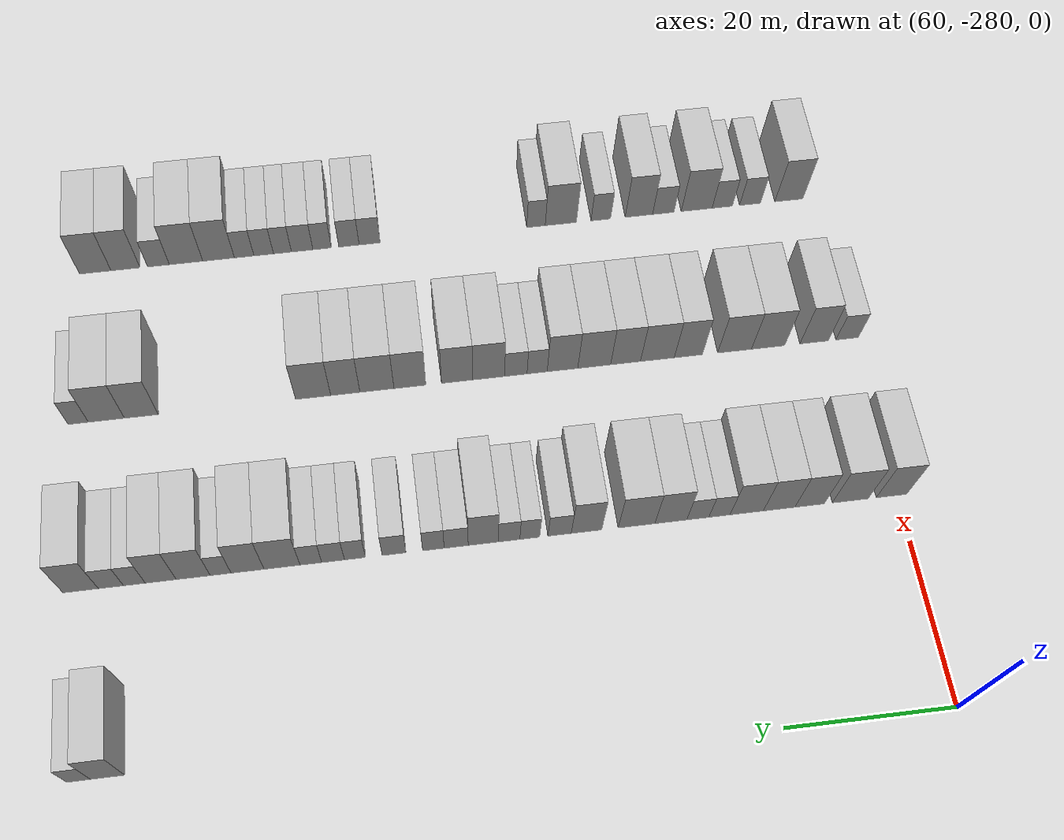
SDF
<sdf version="1.6">
 <world name="default">
  <model name="building_421">
   <static>1</static>
   <pose>69.0000 -184.6597 0 0.000000 0.000000 0.000000</pose>
   <link name="link">
    <pose>0 0 4.50 0 0 0</pose>
    <collision name="collision"><geometry><box><size>10.0000 3.7377 9.0000</size></box></geometry></collision>
    <visual name="visual">
     <cast_shadows>0</cast_shadows>
     <geometry><box><size>10.0000 3.7377 9.0000</size></box></geometry>
     <material>
      <script>
       <uri>model://HANNAS_wall/materials/scripts</uri>
       <uri>model://HANNAS_wall/materials/textures</uri>
       <name>vrc/HANNAS_wall</name>
      </script>
     </material>
    </visual>
   </link>
  </model>
  <model name="building_422">
   <static>1</static>
   <pose>69.0000 -181.4942 0 0.000000 0.000000 0.000000</pose>
   <link name="link">
    <pose>0 0 3.00 0 0 0</pose>
    <collision name="collision"><geometry><box><size>10.0000 2.5933 6.0000</size></box></geometry></collision>
    <visual name="visual">
     <cast_shadows>0</cast_shadows>
     <geometry><box><size>10.0000 2.5933 6.0000</size></box></geometry>
     <material>
      <script>
       <uri>model://HANNAS_wall/materials/scripts</uri>
       <uri>model://HANNAS_wall/materials/textures</uri>
       <name>vrc/HANNAS_wall</name>
      </script>
     </material>
    </visual>
   </link>
  </model>
  <model name="building_589">
   <static>1</static>
   <pose>91.0000 -279.3020 0 0.000000 0.000000 0.000000</pose>
   <link name="link">
    <pose>0 0 4.50 0 0 0</pose>
    <collision name="collision"><geometry><box><size>10.0000 3.8120 9.0000</size></box></geometry></collision>
    <visual name="visual">
     <cast_shadows>0</cast_shadows>
     <geometry><box><size>10.0000 3.8120 9.0000</size></box></geometry>
     <material>
      <script>
       <uri>model://HANNAS_wall/materials/scripts</uri>
       <uri>model://HANNAS_wall/materials/textures</uri>
       <name>vrc/HANNAS_wall</name>
      </script>
     </material>
    </visual>
   </link>
  </model>
  <model name="building_590">
   <static>1</static>
   <pose>91.0000 -274.1659 0 0.000000 0.000000 0.000000</pose>
   <link name="link">
    <pose>0 0 4.50 0 0 0</pose>
    <collision name="collision"><geometry><box><size>10.0000 4.4603 9.0000</size></box></geometry></collision>
    <visual name="visual">
     <cast_shadows>0</cast_shadows>
     <geometry><box><size>10.0000 4.4603 9.0000</size></box></geometry>
     <material>
      <script>
       <uri>model://HANNAS_wall/materials/scripts</uri>
       <uri>model://HANNAS_wall/materials/textures</uri>
       <name>vrc/HANNAS_wall</name>
      </script>
     </material>
    </visual>
   </link>
  </model>
  <model name="building_591">
   <static>1</static>
   <pose>91.0000 -269.1174 0 0.000000 0.000000 0.000000</pose>
   <link name="link">
    <pose>0 0 4.50 0 0 0</pose>
    <collision name="collision"><geometry><box><size>10.0000 3.6366 9.0000</size></box></geometry></collision>
    <visual name="visual">
     <cast_shadows>0</cast_shadows>
     <geometry><box><size>10.0000 3.6366 9.0000</size></box></geometry>
     <material>
      <script>
       <uri>model://HANNAS_wall/materials/scripts</uri>
       <uri>model://HANNAS_wall/materials/textures</uri>
       <name>vrc/HANNAS_wall</name>
      </script>
     </material>
    </visual>
   </link>
  </model>
  <model name="building_592">
   <static>1</static>
   <pose>91.0000 -265.3393 0 0.000000 0.000000 0.000000</pose>
   <link name="link">
    <pose>0 0 4.50 0 0 0</pose>
    <collision name="collision"><geometry><box><size>10.0000 3.9196 9.0000</size></box></geometry></collision>
    <visual name="visual">
     <cast_shadows>0</cast_shadows>
     <geometry><box><size>10.0000 3.9196 9.0000</size></box></geometry>
     <material>
      <script>
       <uri>model://HANNAS_wall/materials/scripts</uri>
       <uri>model://HANNAS_wall/materials/textures</uri>
       <name>vrc/HANNAS_wall</name>
      </script>
     </material>
    </visual>
   </link>
  </model>
  <model name="building_593">
   <static>1</static>
   <pose>91.0000 -261.3252 0 0.000000 0.000000 0.000000</pose>
   <link name="link">
    <pose>0 0 4.50 0 0 0</pose>
    <collision name="collision"><geometry><box><size>10.0000 4.1085 9.0000</size></box></geometry></collision>
    <visual name="visual">
     <cast_shadows>0</cast_shadows>
     <geometry><box><size>10.0000 4.1085 9.0000</size></box></geometry>
     <material>
      <script>
       <uri>model://HANNAS_wall/materials/scripts</uri>
       <uri>model://HANNAS_wall/materials/textures</uri>
       <name>vrc/HANNAS_wall</name>
      </script>
     </material>
    </visual>
   </link>
  </model>
  <model name="building_594">
   <static>1</static>
   <pose>91.0000 -257.9754 0 0.000000 0.000000 0.000000</pose>
   <link name="link">
    <pose>0 0 3.00 0 0 0</pose>
    <collision name="collision"><geometry><box><size>10.0000 2.5911 6.0000</size></box></geometry></collision>
    <visual name="visual">
     <cast_shadows>0</cast_shadows>
     <geometry><box><size>10.0000 2.5911 6.0000</size></box></geometry>
     <material>
      <script>
       <uri>model://HANNAS_wall/materials/scripts</uri>
       <uri>model://HANNAS_wall/materials/textures</uri>
       <name>vrc/HANNAS_wall</name>
      </script>
     </material>
    </visual>
   </link>
  </model>
  <model name="building_595">
   <static>1</static>
   <pose>91.0000 -255.3203 0 0.000000 0.000000 0.000000</pose>
   <link name="link">
    <pose>0 0 3.00 0 0 0</pose>
    <collision name="collision"><geometry><box><size>10.0000 2.7192 6.0000</size></box></geometry></collision>
    <visual name="visual">
     <cast_shadows>0</cast_shadows>
     <geometry><box><size>10.0000 2.7192 6.0000</size></box></geometry>
     <material>
      <script>
       <uri>model://HANNAS_wall/materials/scripts</uri>
       <uri>model://HANNAS_wall/materials/textures</uri>
       <name>vrc/HANNAS_wall</name>
      </script>
     </material>
    </visual>
   </link>
  </model>
  <model name="building_596">
   <static>1</static>
   <pose>91.0000 -252.0089 0 0.000000 0.000000 0.000000</pose>
   <link name="link">
    <pose>0 0 4.50 0 0 0</pose>
    <collision name="collision"><geometry><box><size>10.0000 3.9035 9.0000</size></box></geometry></collision>
    <visual name="visual">
     <cast_shadows>0</cast_shadows>
     <geometry><box><size>10.0000 3.9035 9.0000</size></box></geometry>
     <material>
      <script>
       <uri>model://HANNAS_wall/materials/scripts</uri>
       <uri>model://HANNAS_wall/materials/textures</uri>
       <name>vrc/HANNAS_wall</name>
      </script>
     </material>
    </visual>
   </link>
  </model>
  <model name="building_597">
   <static>1</static>
   <pose>91.0000 -247.8143 0 0.000000 0.000000 0.000000</pose>
   <link name="link">
    <pose>0 0 4.50 0 0 0</pose>
    <collision name="collision"><geometry><box><size>10.0000 4.4857 9.0000</size></box></geometry></collision>
    <visual name="visual">
     <cast_shadows>0</cast_shadows>
     <geometry><box><size>10.0000 4.4857 9.0000</size></box></geometry>
     <material>
      <script>
       <uri>model://HANNAS_wall/materials/scripts</uri>
       <uri>model://HANNAS_wall/materials/textures</uri>
       <name>vrc/HANNAS_wall</name>
      </script>
     </material>
    </visual>
   </link>
  </model>
  <model name="building_598">
   <static>1</static>
   <pose>91.0000 -241.7191 0 0.000000 0.000000 0.000000</pose>
   <link name="link">
    <pose>0 0 4.50 0 0 0</pose>
    <collision name="collision"><geometry><box><size>10.0000 3.7048 9.0000</size></box></geometry></collision>
    <visual name="visual">
     <cast_shadows>0</cast_shadows>
     <geometry><box><size>10.0000 3.7048 9.0000</size></box></geometry>
     <material>
      <script>
       <uri>model://HANNAS_wall/materials/scripts</uri>
       <uri>model://HANNAS_wall/materials/textures</uri>
       <name>vrc/HANNAS_wall</name>
      </script>
     </material>
    </visual>
   </link>
  </model>
  <model name="building_599">
   <static>1</static>
   <pose>91.0000 -238.4529 0 0.000000 0.000000 0.000000</pose>
   <link name="link">
    <pose>0 0 3.00 0 0 0</pose>
    <collision name="collision"><geometry><box><size>10.0000 2.8276 6.0000</size></box></geometry></collision>
    <visual name="visual">
     <cast_shadows>0</cast_shadows>
     <geometry><box><size>10.0000 2.8276 6.0000</size></box></geometry>
     <material>
      <script>
       <uri>model://HANNAS_wall/materials/scripts</uri>
       <uri>model://HANNAS_wall/materials/textures</uri>
       <name>vrc/HANNAS_wall</name>
      </script>
     </material>
    </visual>
   </link>
  </model>
  <model name="building_600">
   <static>1</static>
   <pose>91.0000 -234.8374 0 0.000000 0.000000 0.000000</pose>
   <link name="link">
    <pose>0 0 3.00 0 0 0</pose>
    <collision name="collision"><geometry><box><size>10.0000 2.4034 6.0000</size></box></geometry></collision>
    <visual name="visual">
     <cast_shadows>0</cast_shadows>
     <geometry><box><size>10.0000 2.4034 6.0000</size></box></geometry>
     <material>
      <script>
       <uri>model://HANNAS_wall/materials/scripts</uri>
       <uri>model://HANNAS_wall/materials/textures</uri>
       <name>vrc/HANNAS_wall</name>
      </script>
     </material>
    </visual>
   </link>
  </model>
  <model name="building_601">
   <static>1</static>
   <pose>91.0000 -232.3270 0 0.000000 0.000000 0.000000</pose>
   <link name="link">
    <pose>0 0 3.00 0 0 0</pose>
    <collision name="collision"><geometry><box><size>10.0000 2.6175 6.0000</size></box></geometry></collision>
    <visual name="visual">
     <cast_shadows>0</cast_shadows>
     <geometry><box><size>10.0000 2.6175 6.0000</size></box></geometry>
     <material>
      <script>
       <uri>model://HANNAS_wall/materials/scripts</uri>
       <uri>model://HANNAS_wall/materials/textures</uri>
       <name>vrc/HANNAS_wall</name>
      </script>
     </material>
    </visual>
   </link>
  </model>
  <model name="building_602">
   <static>1</static>
   <pose>91.0000 -229.2131 0 0.000000 0.000000 0.000000</pose>
   <link name="link">
    <pose>0 0 4.50 0 0 0</pose>
    <collision name="collision"><geometry><box><size>10.0000 3.6104 9.0000</size></box></geometry></collision>
    <visual name="visual">
     <cast_shadows>0</cast_shadows>
     <geometry><box><size>10.0000 3.6104 9.0000</size></box></geometry>
     <material>
      <script>
       <uri>model://HANNAS_wall/materials/scripts</uri>
       <uri>model://HANNAS_wall/materials/textures</uri>
       <name>vrc/HANNAS_wall</name>
      </script>
     </material>
    </visual>
   </link>
  </model>
  <model name="building_603">
   <static>1</static>
   <pose>91.0000 -225.9628 0 0.000000 0.000000 0.000000</pose>
   <link name="link">
    <pose>0 0 3.00 0 0 0</pose>
    <collision name="collision"><geometry><box><size>10.0000 2.8900 6.0000</size></box></geometry></collision>
    <visual name="visual">
     <cast_shadows>0</cast_shadows>
     <geometry><box><size>10.0000 2.8900 6.0000</size></box></geometry>
     <material>
      <script>
       <uri>model://HANNAS_wall/materials/scripts</uri>
       <uri>model://HANNAS_wall/materials/textures</uri>
       <name>vrc/HANNAS_wall</name>
      </script>
     </material>
    </visual>
   </link>
  </model>
  <model name="building_604">
   <static>1</static>
   <pose>91.0000 -223.2282 0 0.000000 0.000000 0.000000</pose>
   <link name="link">
    <pose>0 0 3.00 0 0 0</pose>
    <collision name="collision"><geometry><box><size>10.0000 2.5791 6.0000</size></box></geometry></collision>
    <visual name="visual">
     <cast_shadows>0</cast_shadows>
     <geometry><box><size>10.0000 2.5791 6.0000</size></box></geometry>
     <material>
      <script>
       <uri>model://HANNAS_wall/materials/scripts</uri>
       <uri>model://HANNAS_wall/materials/textures</uri>
       <name>vrc/HANNAS_wall</name>
      </script>
     </material>
    </visual>
   </link>
  </model>
  <model name="building_605">
   <static>1</static>
   <pose>91.0000 -218.5192 0 0.000000 0.000000 0.000000</pose>
   <link name="link">
    <pose>0 0 3.00 0 0 0</pose>
    <collision name="collision"><geometry><box><size>10.0000 2.8389 6.0000</size></box></geometry></collision>
    <visual name="visual">
     <cast_shadows>0</cast_shadows>
     <geometry><box><size>10.0000 2.8389 6.0000</size></box></geometry>
     <material>
      <script>
       <uri>model://HANNAS_wall/materials/scripts</uri>
       <uri>model://HANNAS_wall/materials/textures</uri>
       <name>vrc/HANNAS_wall</name>
      </script>
     </material>
    </visual>
   </link>
  </model>
  <model name="building_606">
   <static>1</static>
   <pose>91.0000 -213.8500 0 0.000000 0.000000 0.000000</pose>
   <link name="link">
    <pose>0 0 3.00 0 0 0</pose>
    <collision name="collision"><geometry><box><size>10.0000 2.4995 6.0000</size></box></geometry></collision>
    <visual name="visual">
     <cast_shadows>0</cast_shadows>
     <geometry><box><size>10.0000 2.4995 6.0000</size></box></geometry>
     <material>
      <script>
       <uri>model://HANNAS_wall/materials/scripts</uri>
       <uri>model://HANNAS_wall/materials/textures</uri>
       <name>vrc/HANNAS_wall</name>
      </script>
     </material>
    </visual>
   </link>
  </model>
  <model name="building_607">
   <static>1</static>
   <pose>91.0000 -211.2538 0 0.000000 0.000000 0.000000</pose>
   <link name="link">
    <pose>0 0 3.00 0 0 0</pose>
    <collision name="collision"><geometry><box><size>10.0000 2.6928 6.0000</size></box></geometry></collision>
    <visual name="visual">
     <cast_shadows>0</cast_shadows>
     <geometry><box><size>10.0000 2.6928 6.0000</size></box></geometry>
     <material>
      <script>
       <uri>model://HANNAS_wall/materials/scripts</uri>
       <uri>model://HANNAS_wall/materials/textures</uri>
       <name>vrc/HANNAS_wall</name>
      </script>
     </material>
    </visual>
   </link>
  </model>
  <model name="building_608">
   <static>1</static>
   <pose>91.0000 -208.6113 0 0.000000 0.000000 0.000000</pose>
   <link name="link">
    <pose>0 0 3.00 0 0 0</pose>
    <collision name="collision"><geometry><box><size>10.0000 2.5922 6.0000</size></box></geometry></collision>
    <visual name="visual">
     <cast_shadows>0</cast_shadows>
     <geometry><box><size>10.0000 2.5922 6.0000</size></box></geometry>
     <material>
      <script>
       <uri>model://HANNAS_wall/materials/scripts</uri>
       <uri>model://HANNAS_wall/materials/textures</uri>
       <name>vrc/HANNAS_wall</name>
      </script>
     </material>
    </visual>
   </link>
  </model>
  <model name="building_609">
   <static>1</static>
   <pose>91.0000 -205.1755 0 0.000000 0.000000 0.000000</pose>
   <link name="link">
    <pose>0 0 4.50 0 0 0</pose>
    <collision name="collision"><geometry><box><size>10.0000 4.2794 9.0000</size></box></geometry></collision>
    <visual name="visual">
     <cast_shadows>0</cast_shadows>
     <geometry><box><size>10.0000 4.2794 9.0000</size></box></geometry>
     <material>
      <script>
       <uri>model://HANNAS_wall/materials/scripts</uri>
       <uri>model://HANNAS_wall/materials/textures</uri>
       <name>vrc/HANNAS_wall</name>
      </script>
     </material>
    </visual>
   </link>
  </model>
  <model name="building_610">
   <static>1</static>
   <pose>91.0000 -201.0883 0 0.000000 0.000000 0.000000</pose>
   <link name="link">
    <pose>0 0 4.50 0 0 0</pose>
    <collision name="collision"><geometry><box><size>10.0000 3.8949 9.0000</size></box></geometry></collision>
    <visual name="visual">
     <cast_shadows>0</cast_shadows>
     <geometry><box><size>10.0000 3.8949 9.0000</size></box></geometry>
     <material>
      <script>
       <uri>model://HANNAS_wall/materials/scripts</uri>
       <uri>model://HANNAS_wall/materials/textures</uri>
       <name>vrc/HANNAS_wall</name>
      </script>
     </material>
    </visual>
   </link>
  </model>
  <model name="building_611">
   <static>1</static>
   <pose>91.0000 -197.9103 0 0.000000 0.000000 0.000000</pose>
   <link name="link">
    <pose>0 0 3.00 0 0 0</pose>
    <collision name="collision"><geometry><box><size>10.0000 2.4612 6.0000</size></box></geometry></collision>
    <visual name="visual">
     <cast_shadows>0</cast_shadows>
     <geometry><box><size>10.0000 2.4612 6.0000</size></box></geometry>
     <material>
      <script>
       <uri>model://HANNAS_wall/materials/scripts</uri>
       <uri>model://HANNAS_wall/materials/textures</uri>
       <name>vrc/HANNAS_wall</name>
      </script>
     </material>
    </visual>
   </link>
  </model>
  <model name="building_612">
   <static>1</static>
   <pose>91.0000 -194.6801 0 0.000000 0.000000 0.000000</pose>
   <link name="link">
    <pose>0 0 4.50 0 0 0</pose>
    <collision name="collision"><geometry><box><size>10.0000 3.9992 9.0000</size></box></geometry></collision>
    <visual name="visual">
     <cast_shadows>0</cast_shadows>
     <geometry><box><size>10.0000 3.9992 9.0000</size></box></geometry>
     <material>
      <script>
       <uri>model://HANNAS_wall/materials/scripts</uri>
       <uri>model://HANNAS_wall/materials/textures</uri>
       <name>vrc/HANNAS_wall</name>
      </script>
     </material>
    </visual>
   </link>
  </model>
  <model name="building_613">
   <static>1</static>
   <pose>91.0000 -190.8621 0 0.000000 0.000000 0.000000</pose>
   <link name="link">
    <pose>0 0 4.50 0 0 0</pose>
    <collision name="collision"><geometry><box><size>10.0000 3.6367 9.0000</size></box></geometry></collision>
    <visual name="visual">
     <cast_shadows>0</cast_shadows>
     <geometry><box><size>10.0000 3.6367 9.0000</size></box></geometry>
     <material>
      <script>
       <uri>model://HANNAS_wall/materials/scripts</uri>
       <uri>model://HANNAS_wall/materials/textures</uri>
       <name>vrc/HANNAS_wall</name>
      </script>
     </material>
    </visual>
   </link>
  </model>
  <model name="building_614">
   <static>1</static>
   <pose>91.0000 -187.7727 0 0.000000 0.000000 0.000000</pose>
   <link name="link">
    <pose>0 0 3.00 0 0 0</pose>
    <collision name="collision"><geometry><box><size>10.0000 2.5421 6.0000</size></box></geometry></collision>
    <visual name="visual">
     <cast_shadows>0</cast_shadows>
     <geometry><box><size>10.0000 2.5421 6.0000</size></box></geometry>
     <material>
      <script>
       <uri>model://HANNAS_wall/materials/scripts</uri>
       <uri>model://HANNAS_wall/materials/textures</uri>
       <name>vrc/HANNAS_wall</name>
      </script>
     </material>
    </visual>
   </link>
  </model>
  <model name="building_615">
   <static>1</static>
   <pose>91.0000 -185.0301 0 0.000000 0.000000 0.000000</pose>
   <link name="link">
    <pose>0 0 3.00 0 0 0</pose>
    <collision name="collision"><geometry><box><size>10.0000 2.9431 6.0000</size></box></geometry></collision>
    <visual name="visual">
     <cast_shadows>0</cast_shadows>
     <geometry><box><size>10.0000 2.9431 6.0000</size></box></geometry>
     <material>
      <script>
       <uri>model://HANNAS_wall/materials/scripts</uri>
       <uri>model://HANNAS_wall/materials/textures</uri>
       <name>vrc/HANNAS_wall</name>
      </script>
     </material>
    </visual>
   </link>
  </model>
  <model name="building_616">
   <static>1</static>
   <pose>91.0000 -181.4912 0 0.000000 0.000000 0.000000</pose>
   <link name="link">
    <pose>0 0 4.50 0 0 0</pose>
    <collision name="collision"><geometry><box><size>10.0000 4.1348 9.0000</size></box></geometry></collision>
    <visual name="visual">
     <cast_shadows>0</cast_shadows>
     <geometry><box><size>10.0000 4.1348 9.0000</size></box></geometry>
     <material>
      <script>
       <uri>model://HANNAS_wall/materials/scripts</uri>
       <uri>model://HANNAS_wall/materials/textures</uri>
       <name>vrc/HANNAS_wall</name>
      </script>
     </material>
    </visual>
   </link>
  </model>
  <model name="building_783">
   <static>1</static>
   <pose>113.0000 -279.2886 0 0.000000 0.000000 0.000000</pose>
   <link name="link">
    <pose>0 0 3.00 0 0 0</pose>
    <collision name="collision"><geometry><box><size>10.0000 2.9681 6.0000</size></box></geometry></collision>
    <visual name="visual">
     <cast_shadows>0</cast_shadows>
     <geometry><box><size>10.0000 2.9681 6.0000</size></box></geometry>
     <material>
      <script>
       <uri>model://HANNAS_wall/materials/scripts</uri>
       <uri>model://HANNAS_wall/materials/textures</uri>
       <name>vrc/HANNAS_wall</name>
      </script>
     </material>
    </visual>
   </link>
  </model>
  <model name="building_784">
   <static>1</static>
   <pose>113.0000 -274.9333 0 0.000000 0.000000 0.000000</pose>
   <link name="link">
    <pose>0 0 4.50 0 0 0</pose>
    <collision name="collision"><geometry><box><size>10.0000 3.7425 9.0000</size></box></geometry></collision>
    <visual name="visual">
     <cast_shadows>0</cast_shadows>
     <geometry><box><size>10.0000 3.7425 9.0000</size></box></geometry>
     <material>
      <script>
       <uri>model://HANNAS_wall/materials/scripts</uri>
       <uri>model://HANNAS_wall/materials/textures</uri>
       <name>vrc/HANNAS_wall</name>
      </script>
     </material>
    </visual>
   </link>
  </model>
  <model name="building_785">
   <static>1</static>
   <pose>113.0000 -268.8866 0 0.000000 0.000000 0.000000</pose>
   <link name="link">
    <pose>0 0 4.50 0 0 0</pose>
    <collision name="collision"><geometry><box><size>10.0000 4.3509 9.0000</size></box></geometry></collision>
    <visual name="visual">
     <cast_shadows>0</cast_shadows>
     <geometry><box><size>10.0000 4.3509 9.0000</size></box></geometry>
     <material>
      <script>
       <uri>model://HANNAS_wall/materials/scripts</uri>
       <uri>model://HANNAS_wall/materials/textures</uri>
       <name>vrc/HANNAS_wall</name>
      </script>
     </material>
    </visual>
   </link>
  </model>
  <model name="building_786">
   <static>1</static>
   <pose>113.0000 -264.4949 0 0.000000 0.000000 0.000000</pose>
   <link name="link">
    <pose>0 0 4.50 0 0 0</pose>
    <collision name="collision"><geometry><box><size>10.0000 4.4325 9.0000</size></box></geometry></collision>
    <visual name="visual">
     <cast_shadows>0</cast_shadows>
     <geometry><box><size>10.0000 4.4325 9.0000</size></box></geometry>
     <material>
      <script>
       <uri>model://HANNAS_wall/materials/scripts</uri>
       <uri>model://HANNAS_wall/materials/textures</uri>
       <name>vrc/HANNAS_wall</name>
      </script>
     </material>
    </visual>
   </link>
  </model>
  <model name="building_787">
   <static>1</static>
   <pose>113.0000 -258.4489 0 0.000000 0.000000 0.000000</pose>
   <link name="link">
    <pose>0 0 4.50 0 0 0</pose>
    <collision name="collision"><geometry><box><size>10.0000 3.6595 9.0000</size></box></geometry></collision>
    <visual name="visual">
     <cast_shadows>0</cast_shadows>
     <geometry><box><size>10.0000 3.6595 9.0000</size></box></geometry>
     <material>
      <script>
       <uri>model://HANNAS_wall/materials/scripts</uri>
       <uri>model://HANNAS_wall/materials/textures</uri>
       <name>vrc/HANNAS_wall</name>
      </script>
     </material>
    </visual>
   </link>
  </model>
  <model name="building_788">
   <static>1</static>
   <pose>113.0000 -254.4229 0 0.000000 0.000000 0.000000</pose>
   <link name="link">
    <pose>0 0 4.50 0 0 0</pose>
    <collision name="collision"><geometry><box><size>10.0000 4.3925 9.0000</size></box></geometry></collision>
    <visual name="visual">
     <cast_shadows>0</cast_shadows>
     <geometry><box><size>10.0000 4.3925 9.0000</size></box></geometry>
     <material>
      <script>
       <uri>model://HANNAS_wall/materials/scripts</uri>
       <uri>model://HANNAS_wall/materials/textures</uri>
       <name>vrc/HANNAS_wall</name>
      </script>
     </material>
    </visual>
   </link>
  </model>
  <model name="building_789">
   <static>1</static>
   <pose>113.0000 -250.2939 0 0.000000 0.000000 0.000000</pose>
   <link name="link">
    <pose>0 0 4.50 0 0 0</pose>
    <collision name="collision"><geometry><box><size>10.0000 3.8654 9.0000</size></box></geometry></collision>
    <visual name="visual">
     <cast_shadows>0</cast_shadows>
     <geometry><box><size>10.0000 3.8654 9.0000</size></box></geometry>
     <material>
      <script>
       <uri>model://HANNAS_wall/materials/scripts</uri>
       <uri>model://HANNAS_wall/materials/textures</uri>
       <name>vrc/HANNAS_wall</name>
      </script>
     </material>
    </visual>
   </link>
  </model>
  <model name="building_790">
   <static>1</static>
   <pose>113.0000 -246.2381 0 0.000000 0.000000 0.000000</pose>
   <link name="link">
    <pose>0 0 4.50 0 0 0</pose>
    <collision name="collision"><geometry><box><size>10.0000 4.2463 9.0000</size></box></geometry></collision>
    <visual name="visual">
     <cast_shadows>0</cast_shadows>
     <geometry><box><size>10.0000 4.2463 9.0000</size></box></geometry>
     <material>
      <script>
       <uri>model://HANNAS_wall/materials/scripts</uri>
       <uri>model://HANNAS_wall/materials/textures</uri>
       <name>vrc/HANNAS_wall</name>
      </script>
     </material>
    </visual>
   </link>
  </model>
  <model name="building_791">
   <static>1</static>
   <pose>113.0000 -242.1448 0 0.000000 0.000000 0.000000</pose>
   <link name="link">
    <pose>0 0 4.50 0 0 0</pose>
    <collision name="collision"><geometry><box><size>10.0000 3.9402 9.0000</size></box></geometry></collision>
    <visual name="visual">
     <cast_shadows>0</cast_shadows>
     <geometry><box><size>10.0000 3.9402 9.0000</size></box></geometry>
     <material>
      <script>
       <uri>model://HANNAS_wall/materials/scripts</uri>
       <uri>model://HANNAS_wall/materials/textures</uri>
       <name>vrc/HANNAS_wall</name>
      </script>
     </material>
    </visual>
   </link>
  </model>
  <model name="building_792">
   <static>1</static>
   <pose>113.0000 -238.8808 0 0.000000 0.000000 0.000000</pose>
   <link name="link">
    <pose>0 0 3.00 0 0 0</pose>
    <collision name="collision"><geometry><box><size>10.0000 2.5878 6.0000</size></box></geometry></collision>
    <visual name="visual">
     <cast_shadows>0</cast_shadows>
     <geometry><box><size>10.0000 2.5878 6.0000</size></box></geometry>
     <material>
      <script>
       <uri>model://HANNAS_wall/materials/scripts</uri>
       <uri>model://HANNAS_wall/materials/textures</uri>
       <name>vrc/HANNAS_wall</name>
      </script>
     </material>
    </visual>
   </link>
  </model>
  <model name="building_793">
   <static>1</static>
   <pose>113.0000 -236.1374 0 0.000000 0.000000 0.000000</pose>
   <link name="link">
    <pose>0 0 3.00 0 0 0</pose>
    <collision name="collision"><geometry><box><size>10.0000 2.8991 6.0000</size></box></geometry></collision>
    <visual name="visual">
     <cast_shadows>0</cast_shadows>
     <geometry><box><size>10.0000 2.8991 6.0000</size></box></geometry>
     <material>
      <script>
       <uri>model://HANNAS_wall/materials/scripts</uri>
       <uri>model://HANNAS_wall/materials/textures</uri>
       <name>vrc/HANNAS_wall</name>
      </script>
     </material>
    </visual>
   </link>
  </model>
  <model name="building_794">
   <static>1</static>
   <pose>113.0000 -232.6427 0 0.000000 0.000000 0.000000</pose>
   <link name="link">
    <pose>0 0 4.50 0 0 0</pose>
    <collision name="collision"><geometry><box><size>10.0000 4.0904 9.0000</size></box></geometry></collision>
    <visual name="visual">
     <cast_shadows>0</cast_shadows>
     <geometry><box><size>10.0000 4.0904 9.0000</size></box></geometry>
     <material>
      <script>
       <uri>model://HANNAS_wall/materials/scripts</uri>
       <uri>model://HANNAS_wall/materials/textures</uri>
       <name>vrc/HANNAS_wall</name>
      </script>
     </material>
    </visual>
   </link>
  </model>
  <model name="building_795">
   <static>1</static>
   <pose>113.0000 -228.6145 0 0.000000 0.000000 0.000000</pose>
   <link name="link">
    <pose>0 0 4.50 0 0 0</pose>
    <collision name="collision"><geometry><box><size>10.0000 3.9659 9.0000</size></box></geometry></collision>
    <visual name="visual">
     <cast_shadows>0</cast_shadows>
     <geometry><box><size>10.0000 3.9659 9.0000</size></box></geometry>
     <material>
      <script>
       <uri>model://HANNAS_wall/materials/scripts</uri>
       <uri>model://HANNAS_wall/materials/textures</uri>
       <name>vrc/HANNAS_wall</name>
      </script>
     </material>
    </visual>
   </link>
  </model>
  <model name="building_796">
   <static>1</static>
   <pose>113.0000 -222.6066 0 0.000000 0.000000 0.000000</pose>
   <link name="link">
    <pose>0 0 4.50 0 0 0</pose>
    <collision name="collision"><geometry><box><size>10.0000 4.0499 9.0000</size></box></geometry></collision>
    <visual name="visual">
     <cast_shadows>0</cast_shadows>
     <geometry><box><size>10.0000 4.0499 9.0000</size></box></geometry>
     <material>
      <script>
       <uri>model://HANNAS_wall/materials/scripts</uri>
       <uri>model://HANNAS_wall/materials/textures</uri>
       <name>vrc/HANNAS_wall</name>
      </script>
     </material>
    </visual>
   </link>
  </model>
  <model name="building_797">
   <static>1</static>
   <pose>113.0000 -218.4223 0 0.000000 0.000000 0.000000</pose>
   <link name="link">
    <pose>0 0 4.50 0 0 0</pose>
    <collision name="collision"><geometry><box><size>10.0000 4.3187 9.0000</size></box></geometry></collision>
    <visual name="visual">
     <cast_shadows>0</cast_shadows>
     <geometry><box><size>10.0000 4.3187 9.0000</size></box></geometry>
     <material>
      <script>
       <uri>model://HANNAS_wall/materials/scripts</uri>
       <uri>model://HANNAS_wall/materials/textures</uri>
       <name>vrc/HANNAS_wall</name>
      </script>
     </material>
    </visual>
   </link>
  </model>
  <model name="building_798">
   <static>1</static>
   <pose>113.0000 -214.4154 0 0.000000 0.000000 0.000000</pose>
   <link name="link">
    <pose>0 0 4.50 0 0 0</pose>
    <collision name="collision"><geometry><box><size>10.0000 3.6951 9.0000</size></box></geometry></collision>
    <visual name="visual">
     <cast_shadows>0</cast_shadows>
     <geometry><box><size>10.0000 3.6951 9.0000</size></box></geometry>
     <material>
      <script>
       <uri>model://HANNAS_wall/materials/scripts</uri>
       <uri>model://HANNAS_wall/materials/textures</uri>
       <name>vrc/HANNAS_wall</name>
      </script>
     </material>
    </visual>
   </link>
  </model>
  <model name="building_799">
   <static>1</static>
   <pose>113.0000 -210.3493 0 0.000000 0.000000 0.000000</pose>
   <link name="link">
    <pose>0 0 4.50 0 0 0</pose>
    <collision name="collision"><geometry><box><size>10.0000 4.4371 9.0000</size></box></geometry></collision>
    <visual name="visual">
     <cast_shadows>0</cast_shadows>
     <geometry><box><size>10.0000 4.4371 9.0000</size></box></geometry>
     <material>
      <script>
       <uri>model://HANNAS_wall/materials/scripts</uri>
       <uri>model://HANNAS_wall/materials/textures</uri>
       <name>vrc/HANNAS_wall</name>
      </script>
     </material>
    </visual>
   </link>
  </model>
  <model name="building_800">
   <static>1</static>
   <pose>113.0000 -188.8122 0 0.000000 0.000000 0.000000</pose>
   <link name="link">
    <pose>0 0 4.50 0 0 0</pose>
    <collision name="collision"><geometry><box><size>10.0000 4.2124 9.0000</size></box></geometry></collision>
    <visual name="visual">
     <cast_shadows>0</cast_shadows>
     <geometry><box><size>10.0000 4.2124 9.0000</size></box></geometry>
     <material>
      <script>
       <uri>model://HANNAS_wall/materials/scripts</uri>
       <uri>model://HANNAS_wall/materials/textures</uri>
       <name>vrc/HANNAS_wall</name>
      </script>
     </material>
    </visual>
   </link>
  </model>
  <model name="building_801">
   <static>1</static>
   <pose>113.0000 -184.4680 0 0.000000 0.000000 0.000000</pose>
   <link name="link">
    <pose>0 0 4.50 0 0 0</pose>
    <collision name="collision"><geometry><box><size>10.0000 4.4759 9.0000</size></box></geometry></collision>
    <visual name="visual">
     <cast_shadows>0</cast_shadows>
     <geometry><box><size>10.0000 4.4759 9.0000</size></box></geometry>
     <material>
      <script>
       <uri>model://HANNAS_wall/materials/scripts</uri>
       <uri>model://HANNAS_wall/materials/textures</uri>
       <name>vrc/HANNAS_wall</name>
      </script>
     </material>
    </visual>
   </link>
  </model>
  <model name="building_802">
   <static>1</static>
   <pose>113.0000 -180.9722 0 0.000000 0.000000 0.000000</pose>
   <link name="link">
    <pose>0 0 3.00 0 0 0</pose>
    <collision name="collision"><geometry><box><size>10.0000 2.5159 6.0000</size></box></geometry></collision>
    <visual name="visual">
     <cast_shadows>0</cast_shadows>
     <geometry><box><size>10.0000 2.5159 6.0000</size></box></geometry>
     <material>
      <script>
       <uri>model://HANNAS_wall/materials/scripts</uri>
       <uri>model://HANNAS_wall/materials/textures</uri>
       <name>vrc/HANNAS_wall</name>
      </script>
     </material>
    </visual>
   </link>
  </model>
  <model name="building_977">
   <static>1</static>
   <pose>135.0000 -276.6776 0 0.000000 0.000000 0.000000</pose>
   <link name="link">
    <pose>0 0 4.50 0 0 0</pose>
    <collision name="collision"><geometry><box><size>10.0000 3.8957 9.0000</size></box></geometry></collision>
    <visual name="visual">
     <cast_shadows>0</cast_shadows>
     <geometry><box><size>10.0000 3.8957 9.0000</size></box></geometry>
     <material>
      <script>
       <uri>model://HANNAS_wall/materials/scripts</uri>
       <uri>model://HANNAS_wall/materials/textures</uri>
       <name>vrc/HANNAS_wall</name>
      </script>
     </material>
    </visual>
   </link>
  </model>
  <model name="building_978">
   <static>1</static>
   <pose>135.0000 -271.2864 0 0.000000 0.000000 0.000000</pose>
   <link name="link">
    <pose>0 0 3.00 0 0 0</pose>
    <collision name="collision"><geometry><box><size>10.0000 2.8868 6.0000</size></box></geometry></collision>
    <visual name="visual">
     <cast_shadows>0</cast_shadows>
     <geometry><box><size>10.0000 2.8868 6.0000</size></box></geometry>
     <material>
      <script>
       <uri>model://HANNAS_wall/materials/scripts</uri>
       <uri>model://HANNAS_wall/materials/textures</uri>
       <name>vrc/HANNAS_wall</name>
      </script>
     </material>
    </visual>
   </link>
  </model>
  <model name="building_979">
   <static>1</static>
   <pose>135.0000 -267.4430 0 0.000000 0.000000 0.000000</pose>
   <link name="link">
    <pose>0 0 3.00 0 0 0</pose>
    <collision name="collision"><geometry><box><size>10.0000 2.7999 6.0000</size></box></geometry></collision>
    <visual name="visual">
     <cast_shadows>0</cast_shadows>
     <geometry><box><size>10.0000 2.7999 6.0000</size></box></geometry>
     <material>
      <script>
       <uri>model://HANNAS_wall/materials/scripts</uri>
       <uri>model://HANNAS_wall/materials/textures</uri>
       <name>vrc/HANNAS_wall</name>
      </script>
     </material>
    </visual>
   </link>
  </model>
  <model name="building_980">
   <static>1</static>
   <pose>135.0000 -263.9073 0 0.000000 0.000000 0.000000</pose>
   <link name="link">
    <pose>0 0 4.50 0 0 0</pose>
    <collision name="collision"><geometry><box><size>10.0000 4.2715 9.0000</size></box></geometry></collision>
    <visual name="visual">
     <cast_shadows>0</cast_shadows>
     <geometry><box><size>10.0000 4.2715 9.0000</size></box></geometry>
     <material>
      <script>
       <uri>model://HANNAS_wall/materials/scripts</uri>
       <uri>model://HANNAS_wall/materials/textures</uri>
       <name>vrc/HANNAS_wall</name>
      </script>
     </material>
    </visual>
   </link>
  </model>
  <model name="building_981">
   <static>1</static>
   <pose>135.0000 -259.3015 0 0.000000 0.000000 0.000000</pose>
   <link name="link">
    <pose>0 0 3.00 0 0 0</pose>
    <collision name="collision"><geometry><box><size>10.0000 2.9401 6.0000</size></box></geometry></collision>
    <visual name="visual">
     <cast_shadows>0</cast_shadows>
     <geometry><box><size>10.0000 2.9401 6.0000</size></box></geometry>
     <material>
      <script>
       <uri>model://HANNAS_wall/materials/scripts</uri>
       <uri>model://HANNAS_wall/materials/textures</uri>
       <name>vrc/HANNAS_wall</name>
      </script>
     </material>
    </visual>
   </link>
  </model>
  <model name="building_982">
   <static>1</static>
   <pose>135.0000 -255.9523 0 0.000000 0.000000 0.000000</pose>
   <link name="link">
    <pose>0 0 4.50 0 0 0</pose>
    <collision name="collision"><geometry><box><size>10.0000 3.7582 9.0000</size></box></geometry></collision>
    <visual name="visual">
     <cast_shadows>0</cast_shadows>
     <geometry><box><size>10.0000 3.7582 9.0000</size></box></geometry>
     <material>
      <script>
       <uri>model://HANNAS_wall/materials/scripts</uri>
       <uri>model://HANNAS_wall/materials/textures</uri>
       <name>vrc/HANNAS_wall</name>
      </script>
     </material>
    </visual>
   </link>
  </model>
  <model name="building_983">
   <static>1</static>
   <pose>135.0000 -250.7337 0 0.000000 0.000000 0.000000</pose>
   <link name="link">
    <pose>0 0 3.00 0 0 0</pose>
    <collision name="collision"><geometry><box><size>10.0000 2.6789 6.0000</size></box></geometry></collision>
    <visual name="visual">
     <cast_shadows>0</cast_shadows>
     <geometry><box><size>10.0000 2.6789 6.0000</size></box></geometry>
     <material>
      <script>
       <uri>model://HANNAS_wall/materials/scripts</uri>
       <uri>model://HANNAS_wall/materials/textures</uri>
       <name>vrc/HANNAS_wall</name>
      </script>
     </material>
    </visual>
   </link>
  </model>
  <model name="building_984">
   <static>1</static>
   <pose>135.0000 -245.2667 0 0.000000 0.000000 0.000000</pose>
   <link name="link">
    <pose>0 0 4.50 0 0 0</pose>
    <collision name="collision"><geometry><box><size>10.0000 4.2551 9.0000</size></box></geometry></collision>
    <visual name="visual">
     <cast_shadows>0</cast_shadows>
     <geometry><box><size>10.0000 4.2551 9.0000</size></box></geometry>
     <material>
      <script>
       <uri>model://HANNAS_wall/materials/scripts</uri>
       <uri>model://HANNAS_wall/materials/textures</uri>
       <name>vrc/HANNAS_wall</name>
      </script>
     </material>
    </visual>
   </link>
  </model>
  <model name="building_985">
   <static>1</static>
   <pose>135.0000 -241.8818 0 0.000000 0.000000 0.000000</pose>
   <link name="link">
    <pose>0 0 3.00 0 0 0</pose>
    <collision name="collision"><geometry><box><size>10.0000 2.5148 6.0000</size></box></geometry></collision>
    <visual name="visual">
     <cast_shadows>0</cast_shadows>
     <geometry><box><size>10.0000 2.5148 6.0000</size></box></geometry>
     <material>
      <script>
       <uri>model://HANNAS_wall/materials/scripts</uri>
       <uri>model://HANNAS_wall/materials/textures</uri>
       <name>vrc/HANNAS_wall</name>
      </script>
     </material>
    </visual>
   </link>
  </model>
  <model name="building_986">
   <static>1</static>
   <pose>135.0000 -219.3945 0 0.000000 0.000000 0.000000</pose>
   <link name="link">
    <pose>0 0 3.00 0 0 0</pose>
    <collision name="collision"><geometry><box><size>10.0000 2.8199 6.0000</size></box></geometry></collision>
    <visual name="visual">
     <cast_shadows>0</cast_shadows>
     <geometry><box><size>10.0000 2.8199 6.0000</size></box></geometry>
     <material>
      <script>
       <uri>model://HANNAS_wall/materials/scripts</uri>
       <uri>model://HANNAS_wall/materials/textures</uri>
       <name>vrc/HANNAS_wall</name>
      </script>
     </material>
    </visual>
   </link>
  </model>
  <model name="building_987">
   <static>1</static>
   <pose>135.0000 -216.6259 0 0.000000 0.000000 0.000000</pose>
   <link name="link">
    <pose>0 0 3.00 0 0 0</pose>
    <collision name="collision"><geometry><box><size>10.0000 2.7172 6.0000</size></box></geometry></collision>
    <visual name="visual">
     <cast_shadows>0</cast_shadows>
     <geometry><box><size>10.0000 2.7172 6.0000</size></box></geometry>
     <material>
      <script>
       <uri>model://HANNAS_wall/materials/scripts</uri>
       <uri>model://HANNAS_wall/materials/textures</uri>
       <name>vrc/HANNAS_wall</name>
      </script>
     </material>
    </visual>
   </link>
  </model>
  <model name="building_988">
   <static>1</static>
   <pose>135.0000 -213.0341 0 0.000000 0.000000 0.000000</pose>
   <link name="link">
    <pose>0 0 3.00 0 0 0</pose>
    <collision name="collision"><geometry><box><size>10.0000 2.4664 6.0000</size></box></geometry></collision>
    <visual name="visual">
     <cast_shadows>0</cast_shadows>
     <geometry><box><size>10.0000 2.4664 6.0000</size></box></geometry>
     <material>
      <script>
       <uri>model://HANNAS_wall/materials/scripts</uri>
       <uri>model://HANNAS_wall/materials/textures</uri>
       <name>vrc/HANNAS_wall</name>
      </script>
     </material>
    </visual>
   </link>
  </model>
  <model name="building_989">
   <static>1</static>
   <pose>135.0000 -210.3713 0 0.000000 0.000000 0.000000</pose>
   <link name="link">
    <pose>0 0 3.00 0 0 0</pose>
    <collision name="collision"><geometry><box><size>10.0000 2.8593 6.0000</size></box></geometry></collision>
    <visual name="visual">
     <cast_shadows>0</cast_shadows>
     <geometry><box><size>10.0000 2.8593 6.0000</size></box></geometry>
     <material>
      <script>
       <uri>model://HANNAS_wall/materials/scripts</uri>
       <uri>model://HANNAS_wall/materials/textures</uri>
       <name>vrc/HANNAS_wall</name>
      </script>
     </material>
    </visual>
   </link>
  </model>
  <model name="building_990">
   <static>1</static>
   <pose>135.0000 -207.7412 0 0.000000 0.000000 0.000000</pose>
   <link name="link">
    <pose>0 0 3.00 0 0 0</pose>
    <collision name="collision"><geometry><box><size>10.0000 2.4009 6.0000</size></box></geometry></collision>
    <visual name="visual">
     <cast_shadows>0</cast_shadows>
     <geometry><box><size>10.0000 2.4009 6.0000</size></box></geometry>
     <material>
      <script>
       <uri>model://HANNAS_wall/materials/scripts</uri>
       <uri>model://HANNAS_wall/materials/textures</uri>
       <name>vrc/HANNAS_wall</name>
      </script>
     </material>
    </visual>
   </link>
  </model>
  <model name="building_991">
   <static>1</static>
   <pose>135.0000 -205.2403 0 0.000000 0.000000 0.000000</pose>
   <link name="link">
    <pose>0 0 3.00 0 0 0</pose>
    <collision name="collision"><geometry><box><size>10.0000 2.6008 6.0000</size></box></geometry></collision>
    <visual name="visual">
     <cast_shadows>0</cast_shadows>
     <geometry><box><size>10.0000 2.6008 6.0000</size></box></geometry>
     <material>
      <script>
       <uri>model://HANNAS_wall/materials/scripts</uri>
       <uri>model://HANNAS_wall/materials/textures</uri>
       <name>vrc/HANNAS_wall</name>
      </script>
     </material>
    </visual>
   </link>
  </model>
  <model name="building_992">
   <static>1</static>
   <pose>135.0000 -202.6439 0 0.000000 0.000000 0.000000</pose>
   <link name="link">
    <pose>0 0 3.00 0 0 0</pose>
    <collision name="collision"><geometry><box><size>10.0000 2.5920 6.0000</size></box></geometry></collision>
    <visual name="visual">
     <cast_shadows>0</cast_shadows>
     <geometry><box><size>10.0000 2.5920 6.0000</size></box></geometry>
     <material>
      <script>
       <uri>model://HANNAS_wall/materials/scripts</uri>
       <uri>model://HANNAS_wall/materials/textures</uri>
       <name>vrc/HANNAS_wall</name>
      </script>
     </material>
    </visual>
   </link>
  </model>
  <model name="building_993">
   <static>1</static>
   <pose>135.0000 -199.2477 0 0.000000 0.000000 0.000000</pose>
   <link name="link">
    <pose>0 0 4.50 0 0 0</pose>
    <collision name="collision"><geometry><box><size>10.0000 4.2005 9.0000</size></box></geometry></collision>
    <visual name="visual">
     <cast_shadows>0</cast_shadows>
     <geometry><box><size>10.0000 4.2005 9.0000</size></box></geometry>
     <material>
      <script>
       <uri>model://HANNAS_wall/materials/scripts</uri>
       <uri>model://HANNAS_wall/materials/textures</uri>
       <name>vrc/HANNAS_wall</name>
      </script>
     </material>
    </visual>
   </link>
  </model>
  <model name="building_994">
   <static>1</static>
   <pose>135.0000 -194.9352 0 0.000000 0.000000 0.000000</pose>
   <link name="link">
    <pose>0 0 4.50 0 0 0</pose>
    <collision name="collision"><geometry><box><size>10.0000 4.4244 9.0000</size></box></geometry></collision>
    <visual name="visual">
     <cast_shadows>0</cast_shadows>
     <geometry><box><size>10.0000 4.4244 9.0000</size></box></geometry>
     <material>
      <script>
       <uri>model://HANNAS_wall/materials/scripts</uri>
       <uri>model://HANNAS_wall/materials/textures</uri>
       <name>vrc/HANNAS_wall</name>
      </script>
     </material>
    </visual>
   </link>
  </model>
  <model name="building_995">
   <static>1</static>
   <pose>135.0000 -191.2894 0 0.000000 0.000000 0.000000</pose>
   <link name="link">
    <pose>0 0 3.00 0 0 0</pose>
    <collision name="collision"><geometry><box><size>10.0000 2.8672 6.0000</size></box></geometry></collision>
    <visual name="visual">
     <cast_shadows>0</cast_shadows>
     <geometry><box><size>10.0000 2.8672 6.0000</size></box></geometry>
     <material>
      <script>
       <uri>model://HANNAS_wall/materials/scripts</uri>
       <uri>model://HANNAS_wall/materials/textures</uri>
       <name>vrc/HANNAS_wall</name>
      </script>
     </material>
    </visual>
   </link>
  </model>
  <model name="building_996">
   <static>1</static>
   <pose>135.0000 -186.9509 0 0.000000 0.000000 0.000000</pose>
   <link name="link">
    <pose>0 0 4.50 0 0 0</pose>
    <collision name="collision"><geometry><box><size>10.0000 3.8099 9.0000</size></box></geometry></collision>
    <visual name="visual">
     <cast_shadows>0</cast_shadows>
     <geometry><box><size>10.0000 3.8099 9.0000</size></box></geometry>
     <material>
      <script>
       <uri>model://HANNAS_wall/materials/scripts</uri>
       <uri>model://HANNAS_wall/materials/textures</uri>
       <name>vrc/HANNAS_wall</name>
      </script>
     </material>
    </visual>
   </link>
  </model>
  <model name="building_997">
   <static>1</static>
   <pose>135.0000 -182.9759 0 0.000000 0.000000 0.000000</pose>
   <link name="link">
    <pose>0 0 4.50 0 0 0</pose>
    <collision name="collision"><geometry><box><size>10.0000 4.1399 9.0000</size></box></geometry></collision>
    <visual name="visual">
     <cast_shadows>0</cast_shadows>
     <geometry><box><size>10.0000 4.1399 9.0000</size></box></geometry>
     <material>
      <script>
       <uri>model://HANNAS_wall/materials/scripts</uri>
       <uri>model://HANNAS_wall/materials/textures</uri>
       <name>vrc/HANNAS_wall</name>
      </script>
     </material>
    </visual>
   </link>
  </model>
 </world>
</sdf>
